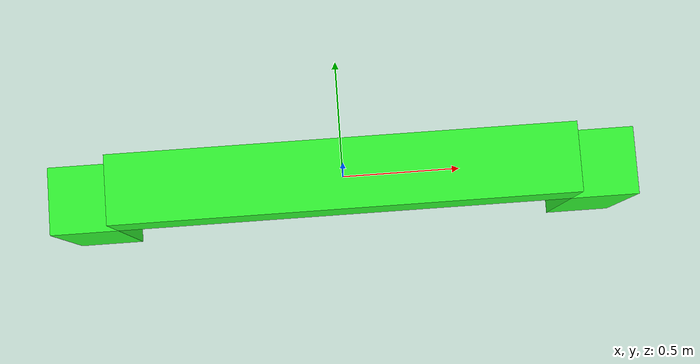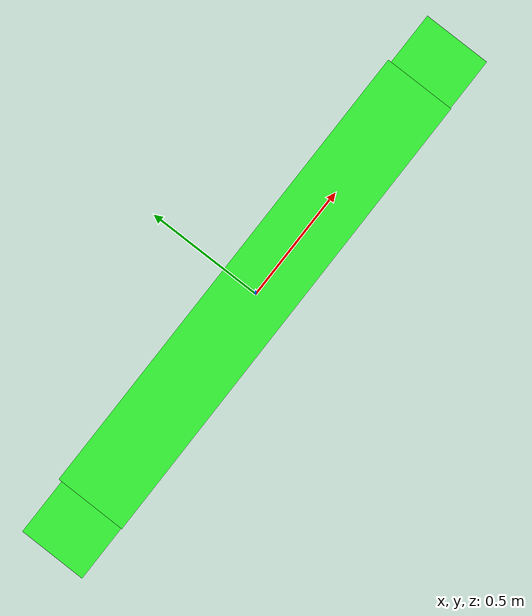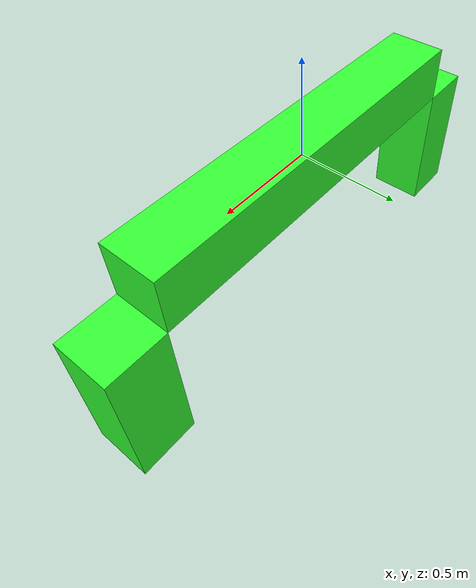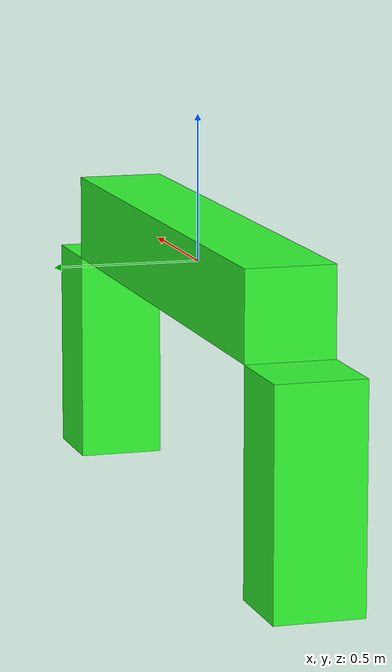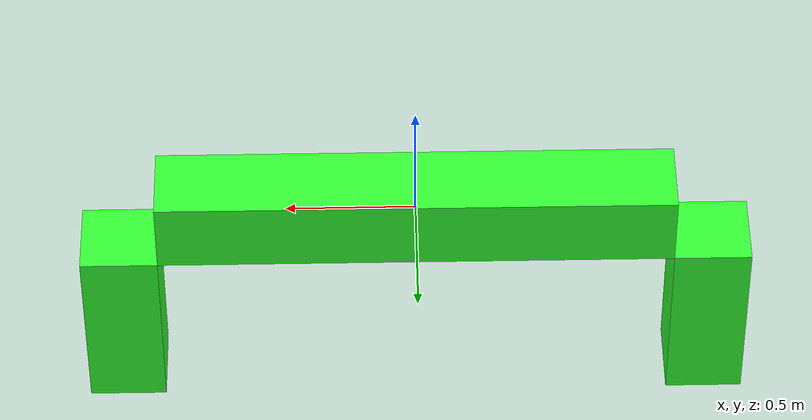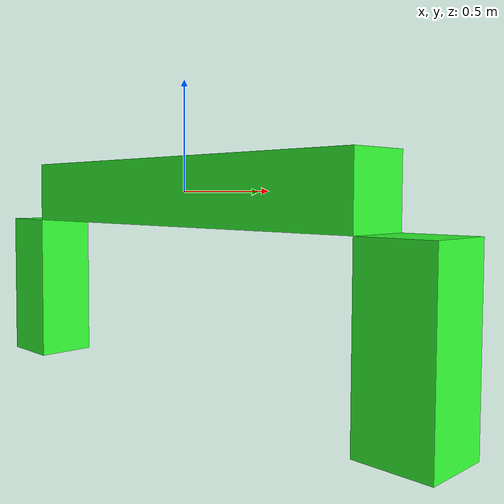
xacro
<robot xmlns:xacro="http://www.ros.org/wiki/xacro"  name="robot">

    <xacro:property name="thikness" value="0.3" />
    <xacro:property name="lenght" value="2" />
    <xacro:property name="leg_len" value="1.5" />
    <xacro:property name="foot_len" value="0.7" />
    <xacro:property name="toll" value="0.05" />
    <xacro:property name="mass" value="0.3" />

    <ros2_control name="KumiHardware" type="system">
        <hardware>
            <plugin>gazebo_ros2_control/GazeboSystem</plugin>
        </hardware>
        <joint name="front_sh">
            <command_interface name="position"/>
            <state_interface name="position"/>
            <state_interface name="velocity"/>
        </joint>
        <joint name="back_sh">
            <command_interface name="position"/>
            <state_interface name="position"/>
            <state_interface name="velocity"/>
        </joint>
    </ros2_control>

    <gazebo>
        <plugin name="gazebo_ros2_control" filename="libgazebo_ros2_control.so">
            <parameters>/home/andreas/dev_ws/install/kumi_controller/share/kumi_controller/config/kumi_control_config.yaml</parameters>
        </plugin>
    </gazebo>

    <link name="body">
        <visual>
            <origin xyz="0 0 0" rpy="0 0 0"/>
            <geometry>
                <box size="${lenght} ${thikness} ${thikness}" />
            </geometry>
            <material name="green">
                <color rgba="0.2 1 0.2 1"/>
            </material>
        </visual>
        <collision>
            <origin xyz="0 0 0" rpy="0 0 0"/>
            <geometry>
                <box size="${2-toll} ${thikness-toll} ${thikness-toll}" />
            </geometry>
        </collision>
        <inertial>
            <origin xyz="0 0 0" rpy="0 0 0"/>
            <mass value="1" />
            <inertia ixx="0.015" ixy="0.0" ixz="0.0" iyy="0.340833" iyz="0.0" izz="0.340833" />
        </inertial>
    </link>

    <joint name="front_sh" type="revolute">
        <origin xyz="${lenght/2} 0 ${-thikness/2}" rpy="0 0 0"/>
        <parent link="body"/>
        <child link="front_leg"/>
        <axis xyz="0 -1 0"/>
        <limit lower="-${pi/4}" upper="${pi/2}" velocity="100" effort="100"/>
    </joint>

    <transmission name="front_sh_trans">
        <type>transmission_interface/SimpleTransmission</type>
        <actuator name="motor1">
            <mechanicalReduction>1.0</mechanicalReduction>
        </actuator>
    </transmission>

    <link name="front_leg">
        <visual>
            <origin xyz="${thikness/2} 0 ${-leg_len/4}" rpy="0 0 0"/>
            <geometry>
                <box size="${thikness} ${thikness} ${leg_len/2}" />
            </geometry>
            <material name="orange">
                <color rgba="0.2 1 0.2 1"/>
            </material>
        </visual>
        <collision>
            <origin xyz="${thikness/2} 0 ${-leg_len/4}" rpy="0 0 0"/>
            <geometry>
                <box size="${thikness-toll} ${thikness-toll} ${leg_len/2-toll}" />
            </geometry>
        </collision>
        <inertial>
            <origin xyz="${thikness/2} 0 ${-leg_len/4}" rpy="0 0 0"/>
            <mass value="1" />
            <inertia ixx="0.090833" ixy="0.0" ixz="0.0" iyy="0.090833" iyz="0.0" izz="0.015000" />
        </inertial>
    </link>

    <joint name="back_sh" type="revolute">
        <origin xyz="${-lenght/2} 0 ${-thikness/2}" rpy="0 0 0"/>
        <parent link="body"/>
        <child link="back_leg"/>
        <axis xyz="0 -1 0"/>
        <limit lower="-${pi/2}" upper="${pi/4}" velocity="100" effort="100"/>
    </joint>

    <transmission name="back_sh_trans">
        <type>transmission_interface/SimpleTransmission</type>
        <actuator name="motor4">
            <mechanicalReduction>1.0</mechanicalReduction>
        </actuator>
    </transmission>

    <link name="back_leg">
        <visual>
            <origin xyz="${-thikness/2} 0 ${-leg_len/4}" rpy="0 0 0"/>
            <geometry>
                <box size="${thikness} ${thikness} ${leg_len/2}" />
            </geometry>
            <material name="orange">
                <color rgba="0.2 1 0.2 1"/>
            </material>
        </visual>
        <collision>
            <origin xyz="${-thikness/2} 0 ${-leg_len/4}" rpy="0 0 0"/>
            <geometry>
                <box size="${thikness-toll} ${thikness-toll} ${leg_len/2-toll}" />
            </geometry>
        </collision>
        <inertial>
            <origin xyz="${-thikness/2} 0 ${-leg_len/4}" rpy="0 0 0"/>
            <mass value="1" />
            <inertia ixx="0.090833" ixy="0.0" ixz="0.0" iyy="0.090833" iyz="0.0" izz="0.015000" />
        </inertial>
    </link>

</robot>
